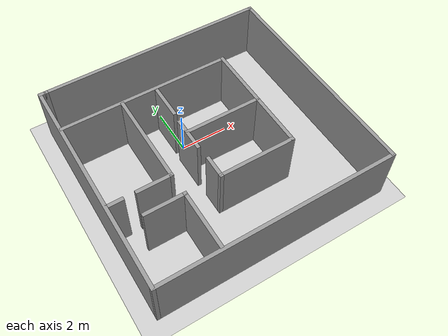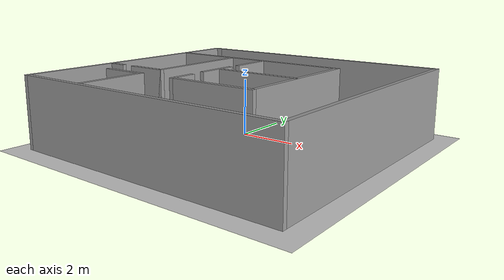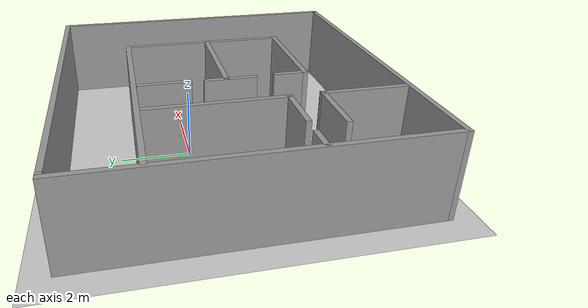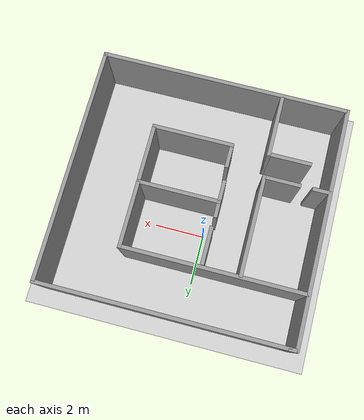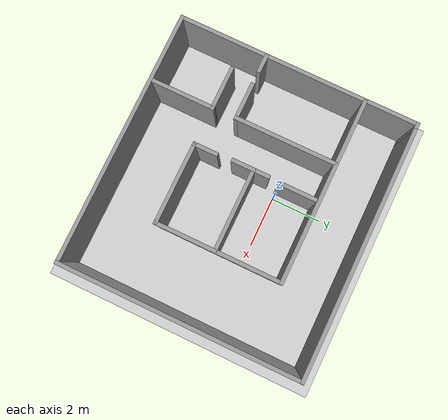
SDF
<sdf version="1.6">
 <world name="default">
  <light name="sun" type="directional">
   <pose>0 0 10 0 -0 0</pose>
   <diffuse>0.8 0.8 0.8 1</diffuse>
   <specular>0.2 0.2 0.2 1</specular>
   <attenuation>
    <range>1000</range>
    <constant>0.9</constant>
    <linear>0.01</linear>
    <quadratic>0.001</quadratic>
   </attenuation>
   <direction>-0.5 0.1 -0.9</direction>
  </light>
  <model name="ground_plane">
   <static>1</static>
   <link name="link">
    <collision name="collision">
     <geometry><plane><normal>0 0 1</normal><size>100 100</size></plane></geometry>
     <surface>
      <contact><collide_bitmask>65535</collide_bitmask></contact>
      <friction><ode><mu>100</mu><mu2>50</mu2></ode></friction>
     </surface>
    </collision>
    <visual name="visual">
     <cast_shadows>0</cast_shadows>
     <geometry><plane><normal>0 0 1</normal><size>100 100</size></plane></geometry>
     <material>
      <script><uri>file://media/materials/scripts/gazebo.material</uri><name>Gazebo/Grey</name></script>
     </material>
    </visual>
   </link>
  </model>
  <gravity>0 0 -9.8</gravity>
  <magnetic_field>6e-06 2.3e-05 -4.2e-05</magnetic_field>
  <atmosphere type="adiabatic"/>
  <physics name="default_physics" default="0" type="ode">
   <max_step_size>0.001</max_step_size>
   <real_time_factor>1</real_time_factor>
   <real_time_update_rate>1000</real_time_update_rate>
  </physics>
  <scene><ambient>0.4 0.4 0.4 1</ambient><background>0.7 0.7 0.7 1</background><shadows>1</shadows></scene>
  <audio><device>default</device></audio>
  <spherical_coordinates>
   <surface_model>EARTH_WGS84</surface_model>
   <latitude_deg>0</latitude_deg>
   <longitude_deg>0</longitude_deg>
   <elevation>0</elevation>
   <heading_deg>0</heading_deg>
  </spherical_coordinates>
  <model name="test">
   <pose>0.599171 -1.1342 0 0 -0 0</pose>
   <link name="Wall_10">
    <collision name="Wall_10_Collision">
     <geometry><box><size>0.4 0.15 2.5</size></box></geometry>
     <pose>0 0 1.25 0 -0 0</pose>
    </collision>
    <visual name="Wall_10_Visual">
     <pose>0 0 1.25 0 -0 0</pose>
     <geometry><box><size>0.4 0.15 2.5</size></box></geometry>
     <material>
      <script><uri>file://media/materials/scripts/gazebo.material</uri><name>Gazebo/Grey</name></script>
      <ambient>1 1 1 1</ambient>
     </material>
     <meta><layer>0</layer></meta>
    </visual>
    <pose>-4.8 4.675 0 0 -0 0</pose>
   </link>
   <link name="Wall_12">
    <collision name="Wall_12_Collision">
     <geometry><box><size>7.25 0.15 2.5</size></box></geometry>
     <pose>0 0 1.25 0 -0 0</pose>
    </collision>
    <visual name="Wall_12_Visual">
     <pose>0 0 1.25 0 -0 0</pose>
     <geometry><box><size>7.25 0.15 2.5</size></box></geometry>
     <material>
      <script><uri>file://media/materials/scripts/gazebo.material</uri><name>Gazebo/Grey</name></script>
      <ambient>1 1 1 1</ambient>
     </material>
     <meta><layer>0</layer></meta>
    </visual>
    <pose>-1.32614 2.64353 0 0 -0 0</pose>
   </link>
   <link name="Wall_14">
    <collision name="Wall_14_Collision">
     <geometry><box><size>5 0.15 2.5</size></box></geometry>
     <pose>0 0 1.25 0 -0 0</pose>
    </collision>
    <visual name="Wall_14_Visual">
     <pose>0 0 1.25 0 -0 0</pose>
     <geometry><box><size>5 0.15 2.5</size></box></geometry>
     <material>
      <script><uri>file://media/materials/scripts/gazebo.material</uri><name>Gazebo/Grey</name></script>
      <ambient>1 1 1 1</ambient>
     </material>
     <meta><layer>0</layer></meta>
    </visual>
    <pose>2.22386 0.218529 0 0 -0 -1.5708</pose>
   </link>
   <link name="Wall_15">
    <collision name="Wall_15_Collision">
     <geometry><box><size>3.25 0.15 2.5</size></box></geometry>
     <pose>0 0 1.25 0 -0 0</pose>
    </collision>
    <visual name="Wall_15_Visual">
     <pose>0 0 1.25 0 -0 0</pose>
     <geometry><box><size>3.25 0.15 2.5</size></box></geometry>
     <material>
      <script><uri>file://media/materials/scripts/gazebo.material</uri><name>Gazebo/Grey</name></script>
      <ambient>1 1 1 1</ambient>
     </material>
     <meta><layer>0</layer></meta>
    </visual>
    <pose>0.673864 -2.20647 0 0 -0 3.14159</pose>
   </link>
   <link name="Wall_16">
    <collision name="Wall_16_Collision">
     <geometry><box><size>1 0.15 2.5</size></box></geometry>
     <pose>0 0 1.25 0 -0 0</pose>
    </collision>
    <visual name="Wall_16_Visual">
     <pose>0 0 1.25 0 -0 0</pose>
     <geometry><box><size>1 0.15 2.5</size></box></geometry>
     <material>
      <script><uri>file://media/materials/scripts/gazebo.material</uri><name>Gazebo/Grey</name></script>
      <ambient>1 1 1 1</ambient>
     </material>
     <meta><layer>0</layer></meta>
    </visual>
    <pose>-0.876136 -1.78147 0 0 -0 1.5708</pose>
   </link>
   <link name="Wall_18">
    <collision name="Wall_18_Collision">
     <geometry><box><size>3.25 0.15 2.5</size></box></geometry>
     <pose>0 0 1.25 0 -0 0</pose>
    </collision>
    <visual name="Wall_18_Visual">
     <pose>0 0 1.25 0 -0 0</pose>
     <geometry><box><size>3.25 0.15 2.5</size></box></geometry>
     <material>
      <script><uri>file://media/materials/scripts/gazebo.material</uri><name>Gazebo/Grey</name></script>
      <ambient>1 1 1 1</ambient>
     </material>
     <meta><layer>0</layer></meta>
    </visual>
    <pose>0.628555 0.089499 0 0 -0 3.14159</pose>
   </link>
   <link name="Wall_20">
    <collision name="Wall_20_Collision">
     <geometry><box><size>1.5 0.15 2.5</size></box></geometry>
     <pose>0 0 1.25 0 -0 0</pose>
    </collision>
    <visual name="Wall_20_Visual">
     <pose>0 0 1.25 0 -0 0</pose>
     <geometry><box><size>1.5 0.15 2.5</size></box></geometry>
     <material>
      <script><uri>file://media/materials/scripts/gazebo.material</uri><name>Gazebo/Grey</name></script>
      <ambient>1 1 1 1</ambient>
     </material>
     <meta><layer>0</layer></meta>
    </visual>
    <pose>-0.899696 1.81064 0 0 -0 -1.5708</pose>
   </link>
   <link name="Wall_22">
    <collision name="Wall_22_Collision">
     <geometry><box><size>1.5 0.15 2.5</size></box></geometry>
     <pose>0 0 1.25 0 -0 0</pose>
    </collision>
    <visual name="Wall_22_Visual">
     <pose>0 0 1.25 0 -0 0</pose>
     <geometry><box><size>1.5 0.15 2.5</size></box></geometry>
     <material>
      <script><uri>file://media/materials/scripts/gazebo.material</uri><name>Gazebo/Grey</name></script>
      <ambient>1 1 1 1</ambient>
     </material>
     <meta><layer>0</layer></meta>
    </visual>
    <pose>-0.934676 -0.025819 0 0 -0 -1.5708</pose>
   </link>
   <link name="Wall_24">
    <collision name="Wall_24_Collision">
     <geometry><box><size>4 0.15 2.5</size></box></geometry>
     <pose>0 0 1.25 0 -0 0</pose>
    </collision>
    <visual name="Wall_24_Visual">
     <pose>0 0 1.25 0 -0 0</pose>
     <geometry><box><size>4 0.15 2.5</size></box></geometry>
     <material>
      <script><uri>file://media/materials/scripts/gazebo.material</uri><name>Gazebo/Grey</name></script>
      <ambient>1 1 1 1</ambient>
     </material>
     <meta><layer>0</layer></meta>
    </visual>
    <pose>-2.36886 0.648088 0 0 -0 -1.5708</pose>
   </link>
   <link name="Wall_25">
    <collision name="Wall_25_Collision">
     <geometry><box><size>1.5 0.15 2.5</size></box></geometry>
     <pose>0 0 1.25 0 -0 0</pose>
    </collision>
    <visual name="Wall_25_Visual">
     <pose>0 0 1.25 0 -0 0</pose>
     <geometry><box><size>1.5 0.15 2.5</size></box></geometry>
     <material>
      <script><uri>file://media/materials/scripts/gazebo.material</uri><name>Gazebo/Grey</name></script>
      <ambient>1 1 1 1</ambient>
     </material>
     <meta><layer>0</layer></meta>
    </visual>
    <pose>-3.04386 -1.27691 0 0 -0 3.14159</pose>
   </link>
   <link name="Wall_27">
    <collision name="Wall_27_Collision">
     <geometry><box><size>0.75 0.15 2.5</size></box></geometry>
     <pose>0 0 1.25 0 -0 0</pose>
    </collision>
    <visual name="Wall_27_Visual">
     <pose>0 0 1.25 0 -0 0</pose>
     <geometry><box><size>0.75 0.15 2.5</size></box></geometry>
     <material>
      <script><uri>file://media/materials/scripts/gazebo.material</uri><name>Gazebo/Grey</name></script>
      <ambient>1 1 1 1</ambient>
     </material>
     <meta><layer>0</layer></meta>
    </visual>
    <pose>-4.60492 -1.27473 0 0 -0 0</pose>
   </link>
   <link name="Wall_29">
    <collision name="Wall_29_Collision">
     <geometry><box><size>1.75 0.15 2.5</size></box></geometry>
     <pose>0 0 1.25 0 -0 0</pose>
    </collision>
    <visual name="Wall_29_Visual">
     <pose>0 0 1.25 0 -0 0</pose>
     <geometry><box><size>1.75 0.15 2.5</size></box></geometry>
     <material>
      <script><uri>file://media/materials/scripts/gazebo.material</uri><name>Gazebo/Grey</name></script>
      <ambient>1 1 1 1</ambient>
     </material>
     <meta><layer>0</layer></meta>
    </visual>
    <pose>-3.13637 -2.20342 0 0 -0 0</pose>
   </link>
   <link name="Wall_30">
    <collision name="Wall_30_Collision">
     <geometry><box><size>2.5 0.15 2.5</size></box></geometry>
     <pose>0 0 1.25 0 -0 0</pose>
    </collision>
    <visual name="Wall_30_Visual">
     <pose>0 0 1.25 0 -0 0</pose>
     <geometry><box><size>2.5 0.15 2.5</size></box></geometry>
     <material>
      <script><uri>file://media/materials/scripts/gazebo.material</uri><name>Gazebo/Grey</name></script>
      <ambient>1 1 1 1</ambient>
     </material>
     <meta><layer>0</layer></meta>
    </visual>
    <pose>-2.33637 -3.37842 0 0 -0 -1.5708</pose>
   </link>
   <link name="Wall_6">
    <collision name="Wall_6_Collision">
     <geometry><box><size>9.75 0.15 2.5</size></box></geometry>
     <pose>0 0 1.25 0 -0 0</pose>
    </collision>
    <visual name="Wall_6_Visual">
     <pose>0 0 1.25 0 -0 0</pose>
     <geometry><box><size>9.75 0.15 2.5</size></box></geometry>
     <material>
      <script><uri>file://media/materials/scripts/gazebo.material</uri><name>Gazebo/Grey</name></script>
      <ambient>1 1 1 1</ambient>
     </material>
     <meta><layer>0</layer></meta>
    </visual>
    <pose>0.125 4.675 0 0 -0 0</pose>
   </link>
   <link name="Wall_7">
    <collision name="Wall_7_Collision">
     <geometry><box><size>9.5 0.15 2.5</size></box></geometry>
     <pose>0 0 1.25 0 -0 0</pose>
    </collision>
    <visual name="Wall_7_Visual">
     <pose>0 0 1.25 0 -0 0</pose>
     <geometry><box><size>9.5 0.15 2.5</size></box></geometry>
     <material>
      <script><uri>file://media/materials/scripts/gazebo.material</uri><name>Gazebo/Grey</name></script>
      <ambient>1 1 1 1</ambient>
     </material>
     <meta><layer>0</layer></meta>
    </visual>
    <pose>4.925 0 0 0 -0 -1.5708</pose>
   </link>
   <link name="Wall_8">
    <collision name="Wall_8_Collision">
     <geometry><box><size>10 0.15 2.5</size></box></geometry>
     <pose>0 0 1.25 0 -0 0</pose>
    </collision>
    <visual name="Wall_8_Visual">
     <pose>0 0 1.25 0 -0 0</pose>
     <geometry><box><size>10 0.15 2.5</size></box></geometry>
     <material>
      <script><uri>file://media/materials/scripts/gazebo.material</uri><name>Gazebo/Grey</name></script>
      <ambient>1 1 1 1</ambient>
     </material>
     <meta><layer>0</layer></meta>
    </visual>
    <pose>-0 -4.675 0 0 -0 3.14159</pose>
   </link>
   <link name="Wall_9">
    <collision name="Wall_9_Collision">
     <geometry><box><size>9.5 0.15 2.5</size></box></geometry>
     <pose>0 0 1.25 0 -0 0</pose>
    </collision>
    <visual name="Wall_9_Visual">
     <pose>0 0 1.25 0 -0 0</pose>
     <geometry><box><size>9.5 0.15 2.5</size></box></geometry>
     <material>
      <script><uri>file://media/materials/scripts/gazebo.material</uri><name>Gazebo/Grey</name></script>
      <ambient>1 1 1 1</ambient>
     </material>
     <meta><layer>0</layer></meta>
    </visual>
    <pose>-4.925 0 0 0 -0 1.5708</pose>
   </link>
   <static>1</static>
  </model>
 </world>
</sdf>
